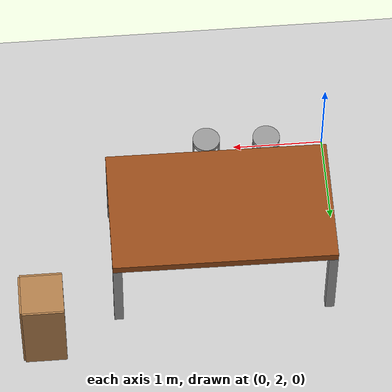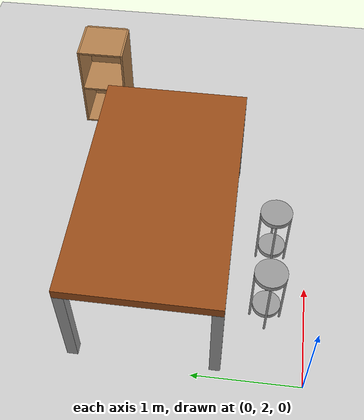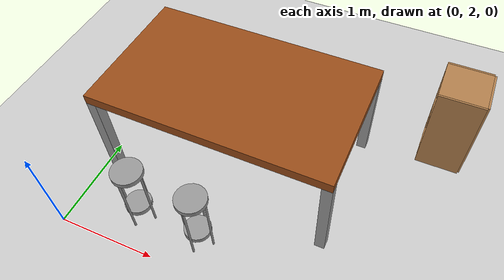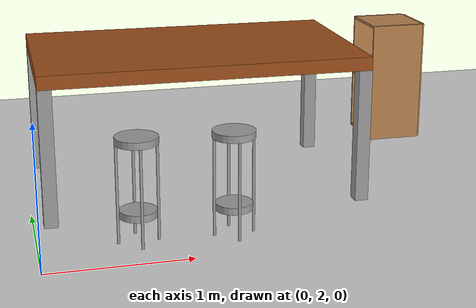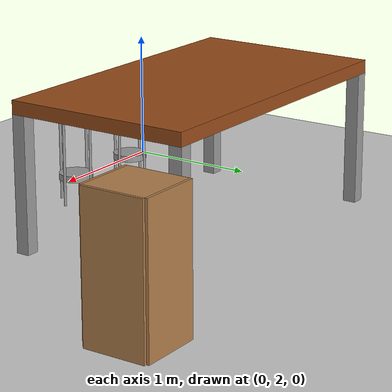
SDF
<sdf version="1.6">
 <world name="default">
  <model name="ground_plane">
   <static>1</static>
   <link name="link">
    <collision name="collision">
     <geometry><plane><normal>0 0 1</normal><size>100 100</size></plane></geometry>
     <surface><friction><ode><mu>100</mu><mu2>50</mu2></ode></friction></surface>
    </collision>
    <visual name="visual">
     <cast_shadows>0</cast_shadows>
     <geometry><plane><normal>0 0 1</normal><size>100 100</size></plane></geometry>
     <material>
      <script><uri>file://media/materials/scripts/gazebo.material</uri><name>Gazebo/Grey</name></script>
     </material>
    </visual>
   </link>
  </model>
  <model name="cabinet">
   <static>1</static>
   <link name="cabinet_bottom_plate">
    <inertial>
     <pose>0 0 -1 0 -0 0</pose>
     <inertia><ixx>2.05</ixx><ixy>0</ixy><ixz>0</ixz><iyy>2.05</iyy><iyz>0</iyz><izz>2.05</izz></inertia>
     <mass>25</mass>
    </inertial>
    <collision name="cabinet_bottom_plate_geom">
     <pose>0 0 0.01 0 -0 0</pose>
     <geometry><box><size>0.45 0.45 0.02</size></box></geometry>
    </collision>
    <visual name="cabinet_bottom_plate_geom_visual">
     <pose>0 0 0.01 0 -0 0</pose>
     <geometry><box><size>0.45 0.45 0.02</size></box></geometry>
     <material>
      <script><uri>file://media/materials/scripts/gazebo.material</uri><name>Gazebo/Wood</name></script>
     </material>
    </visual>
    <collision name="cabinet_bottom_plate_geom_cabinet_back_plate">
     <pose>0.235 0 0.51 0 -0 0</pose>
     <geometry><box><size>0.02 0.45 1.02</size></box></geometry>
    </collision>
    <visual name="cabinet_bottom_plate_geom_cabinet_back_plate_visual">
     <pose>0.235 0 0.51 0 -0 0</pose>
     <geometry><box><size>0.02 0.45 1.02</size></box></geometry>
     <material>
      <script><uri>file://media/materials/scripts/gazebo.material</uri><name>Gazebo/Wood</name></script>
     </material>
    </visual>
    <collision name="cabinet_bottom_plate_geom_cabinet_left_plate">
     <pose>0 0.235 0.51 0 -0 0</pose>
     <geometry><box><size>0.45 0.02 1.02</size></box></geometry>
    </collision>
    <visual name="cabinet_bottom_plate_geom_cabinet_left_plate_visual">
     <pose>0 0.235 0.51 0 -0 0</pose>
     <geometry><box><size>0.45 0.02 1.02</size></box></geometry>
     <material>
      <script><uri>file://media/materials/scripts/gazebo.material</uri><name>Gazebo/Wood</name></script>
     </material>
    </visual>
    <collision name="cabinet_bottom_plate_geom_cabinet_middle_plate">
     <pose>0 0 0.51 0 -0 0</pose>
     <geometry><box><size>0.45 0.45 0.02</size></box></geometry>
    </collision>
    <visual name="cabinet_bottom_plate_geom_cabinet_middle_plate_visual">
     <pose>0 0 0.51 0 -0 0</pose>
     <geometry><box><size>0.45 0.45 0.02</size></box></geometry>
     <material>
      <script><uri>file://media/materials/scripts/gazebo.material</uri><name>Gazebo/Wood</name></script>
     </material>
    </visual>
    <collision name="cabinet_bottom_plate_geom_cabinet_right_plate">
     <pose>0 -0.235 0.51 0 -0 0</pose>
     <geometry><box><size>0.45 0.02 1.02</size></box></geometry>
    </collision>
    <visual name="cabinet_bottom_plate_geom_cabinet_right_plate_visual">
     <pose>0 -0.235 0.51 0 -0 0</pose>
     <geometry><box><size>0.45 0.02 1.02</size></box></geometry>
     <material>
      <script><uri>file://media/materials/scripts/gazebo.material</uri><name>Gazebo/Wood</name></script>
     </material>
    </visual>
    <collision name="cabinet_bottom_plate_geom_cabinet_top_plate">
     <pose>0 0 1.01 0 -0 0</pose>
     <geometry><box><size>0.45 0.45 0.02</size></box></geometry>
    </collision>
    <visual name="cabinet_bottom_plate_geom_cabinet_top_plate_visual">
     <pose>0 0 1.01 0 -0 0</pose>
     <geometry><box><size>0.45 0.45 0.02</size></box></geometry>
     <material>
      <script><uri>file://media/materials/scripts/gazebo.material</uri><name>Gazebo/Wood</name></script>
     </material>
    </visual>
   </link>
   <pose>3.24554 4.32799 0 0 -0 0</pose>
  </model>
  <model name="TableStudent">
   <link name="link_6">
    <pose>0 0 0.44 0 -0 0</pose>
    <inertial>
     <mass>1</mass>
     <inertia>
      <ixx>0.166667</ixx>
      <ixy>0</ixy>
      <ixz>0</ixz>
      <iyy>0.166667</iyy>
      <iyz>0</iyz>
      <izz>0.166667</izz>
     </inertia>
    </inertial>
    <visual name="visual">
     <geometry><box><size>2.4 1.4 0.1</size></box></geometry>
     <material>
      <lighting>1</lighting>
      <script><uri>file://media/materials/scripts/gazebo.material</uri><name>Gazebo/Grey</name></script>
      <shader type="pixel"><normal_map>__default__</normal_map></shader>
      <ambient>0.6 0.3 0.1 1</ambient>
      <diffuse>0.7 0.7 0.7 1</diffuse>
      <specular>0.01 0.01 0.01 1</specular>
      <emissive>0 0 0 1</emissive>
     </material>
    </visual>
    <collision name="collision">
     <geometry><box><size>2.4 1.4 0.1</size></box></geometry>
     <surface>
      <friction>
       <ode><mu>1</mu><mu2>1</mu2><fdir1>0 0 0</fdir1><slip1>0</slip1><slip2>0</slip2></ode>
       <torsional>
        <coefficient>1</coefficient>
        <patch_radius>0</patch_radius>
        <surface_radius>0</surface_radius>
        <use_patch_radius>1</use_patch_radius>
        <ode><slip>0</slip></ode>
       </torsional>
      </friction>
      <bounce><restitution_coefficient>0</restitution_coefficient><threshold>1e+06</threshold></bounce>
      <contact>
       <collide_without_contact>0</collide_without_contact>
       <collide_without_contact_bitmask>1</collide_without_contact_bitmask>
       <collide_bitmask>1</collide_bitmask>
       <ode>
        <soft_cfm>0</soft_cfm>
        <soft_erp>0.2</soft_erp>
        <kp>1e+13</kp>
        <kd>1</kd>
        <max_vel>0.01</max_vel>
        <min_depth>0</min_depth>
       </ode>
       <bullet>
        <split_impulse>1</split_impulse>
        <split_impulse_penetration_threshold>-0.01</split_impulse_penetration_threshold>
        <soft_cfm>0</soft_cfm>
        <soft_erp>0.2</soft_erp>
        <kp>1e+13</kp>
        <kd>1</kd>
       </bullet>
      </contact>
     </surface>
    </collision>
   </link>
   <link name="link_7">
    <pose>1.15 0.65 -0.11 0 -0 0</pose>
    <inertial>
     <mass>2</mass>
     <inertia>
      <ixx>0.166667</ixx>
      <ixy>0</ixy>
      <ixz>0</ixz>
      <iyy>0.166667</iyy>
      <iyz>0</iyz>
      <izz>0.166667</izz>
     </inertia>
    </inertial>
    <visual name="visual">
     <geometry><box><size>0.1 0.1 1</size></box></geometry>
     <material>
      <lighting>1</lighting>
      <script><uri>file://media/materials/scripts/gazebo.material</uri><name>Gazebo/Grey</name></script>
      <shader type="pixel"><normal_map>__default__</normal_map></shader>
      <ambient>0.3 0.3 0.3 1</ambient>
      <diffuse>0.7 0.7 0.7 1</diffuse>
      <specular>0.01 0.01 0.01 1</specular>
      <emissive>0 0 0 1</emissive>
     </material>
    </visual>
    <collision name="collision">
     <geometry><box><size>0.1 0.1 1</size></box></geometry>
     <surface>
      <friction>
       <ode><mu>1</mu><mu2>1</mu2><fdir1>0 0 0</fdir1><slip1>0</slip1><slip2>0</slip2></ode>
       <torsional>
        <coefficient>1</coefficient>
        <patch_radius>0</patch_radius>
        <surface_radius>0</surface_radius>
        <use_patch_radius>1</use_patch_radius>
        <ode><slip>0</slip></ode>
       </torsional>
      </friction>
      <bounce><restitution_coefficient>0</restitution_coefficient><threshold>1e+06</threshold></bounce>
      <contact>
       <collide_without_contact>0</collide_without_contact>
       <collide_without_contact_bitmask>1</collide_without_contact_bitmask>
       <collide_bitmask>1</collide_bitmask>
       <ode>
        <soft_cfm>0</soft_cfm>
        <soft_erp>0.2</soft_erp>
        <kp>1e+13</kp>
        <kd>1</kd>
        <max_vel>0.01</max_vel>
        <min_depth>0</min_depth>
       </ode>
       <bullet>
        <split_impulse>1</split_impulse>
        <split_impulse_penetration_threshold>-0.01</split_impulse_penetration_threshold>
        <soft_cfm>0</soft_cfm>
        <soft_erp>0.2</soft_erp>
        <kp>1e+13</kp>
        <kd>1</kd>
       </bullet>
      </contact>
     </surface>
    </collision>
   </link>
   <link name="link_7_clone">
    <pose>-1.15 -0.65 -0.11 0 -0 0</pose>
    <inertial>
     <mass>2</mass>
     <inertia>
      <ixx>0.166667</ixx>
      <ixy>0</ixy>
      <ixz>0</ixz>
      <iyy>0.166667</iyy>
      <iyz>0</iyz>
      <izz>0.166667</izz>
     </inertia>
    </inertial>
    <visual name="visual">
     <geometry><box><size>0.1 0.1 1</size></box></geometry>
     <material>
      <lighting>1</lighting>
      <script><uri>file://media/materials/scripts/gazebo.material</uri><name>Gazebo/Grey</name></script>
      <shader type="pixel"><normal_map>__default__</normal_map></shader>
      <ambient>0.3 0.3 0.3 1</ambient>
      <diffuse>0.7 0.7 0.7 1</diffuse>
      <specular>0.01 0.01 0.01 1</specular>
      <emissive>0 0 0 1</emissive>
     </material>
    </visual>
    <collision name="collision">
     <geometry><box><size>0.1 0.1 1</size></box></geometry>
     <surface>
      <friction>
       <ode><mu>1</mu><mu2>1</mu2><fdir1>0 0 0</fdir1><slip1>0</slip1><slip2>0</slip2></ode>
       <torsional>
        <coefficient>1</coefficient>
        <patch_radius>0</patch_radius>
        <surface_radius>0</surface_radius>
        <use_patch_radius>1</use_patch_radius>
        <ode><slip>0</slip></ode>
       </torsional>
      </friction>
      <bounce><restitution_coefficient>0</restitution_coefficient><threshold>1e+06</threshold></bounce>
      <contact>
       <collide_without_contact>0</collide_without_contact>
       <collide_without_contact_bitmask>1</collide_without_contact_bitmask>
       <collide_bitmask>1</collide_bitmask>
       <ode>
        <soft_cfm>0</soft_cfm>
        <soft_erp>0.2</soft_erp>
        <kp>1e+13</kp>
        <kd>1</kd>
        <max_vel>0.01</max_vel>
        <min_depth>0</min_depth>
       </ode>
       <bullet>
        <split_impulse>1</split_impulse>
        <split_impulse_penetration_threshold>-0.01</split_impulse_penetration_threshold>
        <soft_cfm>0</soft_cfm>
        <soft_erp>0.2</soft_erp>
        <kp>1e+13</kp>
        <kd>1</kd>
       </bullet>
      </contact>
     </surface>
    </collision>
   </link>
   <link name="link_7_clone_0">
    <pose>1.15 -0.65 -0.11 0 -0 0</pose>
    <inertial>
     <mass>2</mass>
     <inertia>
      <ixx>0.166667</ixx>
      <ixy>0</ixy>
      <ixz>0</ixz>
      <iyy>0.166667</iyy>
      <iyz>0</iyz>
      <izz>0.166667</izz>
     </inertia>
    </inertial>
    <visual name="visual">
     <geometry><box><size>0.1 0.1 1</size></box></geometry>
     <material>
      <lighting>1</lighting>
      <script><uri>file://media/materials/scripts/gazebo.material</uri><name>Gazebo/Grey</name></script>
      <shader type="pixel"><normal_map>__default__</normal_map></shader>
      <ambient>0.3 0.3 0.3 1</ambient>
      <diffuse>0.7 0.7 0.7 1</diffuse>
      <specular>0.01 0.01 0.01 1</specular>
      <emissive>0 0 0 1</emissive>
     </material>
    </visual>
    <collision name="collision">
     <geometry><box><size>0.1 0.1 1</size></box></geometry>
     <surface>
      <friction>
       <ode><mu>1</mu><mu2>1</mu2><fdir1>0 0 0</fdir1><slip1>0</slip1><slip2>0</slip2></ode>
       <torsional>
        <coefficient>1</coefficient>
        <patch_radius>0</patch_radius>
        <surface_radius>0</surface_radius>
        <use_patch_radius>1</use_patch_radius>
        <ode><slip>0</slip></ode>
       </torsional>
      </friction>
      <bounce><restitution_coefficient>0</restitution_coefficient><threshold>1e+06</threshold></bounce>
      <contact>
       <collide_without_contact>0</collide_without_contact>
       <collide_without_contact_bitmask>1</collide_without_contact_bitmask>
       <collide_bitmask>1</collide_bitmask>
       <ode>
        <soft_cfm>0</soft_cfm>
        <soft_erp>0.2</soft_erp>
        <kp>1e+13</kp>
        <kd>1</kd>
        <max_vel>0.01</max_vel>
        <min_depth>0</min_depth>
       </ode>
       <bullet>
        <split_impulse>1</split_impulse>
        <split_impulse_penetration_threshold>-0.01</split_impulse_penetration_threshold>
        <soft_cfm>0</soft_cfm>
        <soft_erp>0.2</soft_erp>
        <kp>1e+13</kp>
        <kd>1</kd>
       </bullet>
      </contact>
     </surface>
    </collision>
   </link>
   <link name="link_7_clone_1">
    <pose>-1.15 0.65 -0.11 0 -0 0</pose>
    <inertial>
     <mass>2</mass>
     <inertia>
      <ixx>0.166667</ixx>
      <ixy>0</ixy>
      <ixz>0</ixz>
      <iyy>0.166667</iyy>
      <iyz>0</iyz>
      <izz>0.166667</izz>
     </inertia>
    </inertial>
    <visual name="visual">
     <geometry><box><size>0.1 0.1 1</size></box></geometry>
     <material>
      <lighting>1</lighting>
      <script><uri>file://media/materials/scripts/gazebo.material</uri><name>Gazebo/Grey</name></script>
      <shader type="pixel"><normal_map>__default__</normal_map></shader>
      <ambient>0.3 0.3 0.3 1</ambient>
      <diffuse>0.7 0.7 0.7 1</diffuse>
      <specular>0.01 0.01 0.01 1</specular>
      <emissive>0 0 0 1</emissive>
     </material>
    </visual>
    <collision name="collision">
     <geometry><box><size>0.1 0.1 1</size></box></geometry>
     <surface>
      <friction>
       <ode><mu>1</mu><mu2>1</mu2><fdir1>0 0 0</fdir1><slip1>0</slip1><slip2>0</slip2></ode>
       <torsional>
        <coefficient>1</coefficient>
        <patch_radius>0</patch_radius>
        <surface_radius>0</surface_radius>
        <use_patch_radius>1</use_patch_radius>
        <ode><slip>0</slip></ode>
       </torsional>
      </friction>
      <bounce><restitution_coefficient>0</restitution_coefficient><threshold>1e+06</threshold></bounce>
      <contact>
       <collide_without_contact>0</collide_without_contact>
       <collide_without_contact_bitmask>1</collide_without_contact_bitmask>
       <collide_bitmask>1</collide_bitmask>
       <ode>
        <soft_cfm>0</soft_cfm>
        <soft_erp>0.2</soft_erp>
        <kp>1e+13</kp>
        <kd>1</kd>
        <max_vel>0.01</max_vel>
        <min_depth>0</min_depth>
       </ode>
       <bullet>
        <split_impulse>1</split_impulse>
        <split_impulse_penetration_threshold>-0.01</split_impulse_penetration_threshold>
        <soft_cfm>0</soft_cfm>
        <soft_erp>0.2</soft_erp>
        <kp>1e+13</kp>
        <kd>1</kd>
       </bullet>
      </contact>
     </surface>
    </collision>
   </link>
   <joint name="link_6_JOINT_10" type="fixed">
    <parent>link_6</parent>
    <child>link_7_clone</child>
    <physics>
     <ode><limit><cfm>0</cfm><erp>0.2</erp></limit><suspension><cfm>0</cfm><erp>0.2</erp></suspension></ode>
    </physics>
   </joint>
   <joint name="link_6_JOINT_11" type="fixed">
    <parent>link_6</parent>
    <child>link_7_clone_1</child>
    <physics>
     <ode><limit><cfm>0</cfm><erp>0.2</erp></limit><suspension><cfm>0</cfm><erp>0.2</erp></suspension></ode>
    </physics>
   </joint>
   <joint name="link_6_JOINT_12" type="fixed">
    <parent>link_6</parent>
    <child>link_7</child>
    <physics>
     <ode><limit><cfm>0</cfm><erp>0.2</erp></limit><suspension><cfm>0</cfm><erp>0.2</erp></suspension></ode>
    </physics>
   </joint>
   <joint name="link_6_JOINT_13" type="revolute">
    <parent>link_6</parent>
    <child>link_7_clone_0</child>
    <axis>
     <xyz>1 0 0</xyz>
     <use_parent_model_frame>0</use_parent_model_frame>
     <limit>
      <lower>-1.79769e+308</lower>
      <upper>1.79769e+308</upper>
      <effort>-1</effort>
      <velocity>-1</velocity>
     </limit>
     <dynamics>
      <spring_reference>0</spring_reference>
      <spring_stiffness>0</spring_stiffness>
      <damping>0</damping>
     </dynamics>
    </axis>
    <physics>
     <ode><limit><cfm>0</cfm><erp>0.2</erp></limit><suspension><cfm>0</cfm><erp>0.2</erp></suspension></ode>
    </physics>
   </joint>
   <static>0</static>
   <pose>1.27771 3.43037 0.61 0 0 -0.008017</pose>
  </model>
  <model name="Stool_0">
   <link name="link_3">
    <pose>0 -0 0.316667 0 -0 0</pose>
    <inertial>
     <mass>0.2</mass>
     <inertia><ixx>0.145833</ixx><ixy>0</ixy><ixz>0</ixz><iyy>0.145833</iyy><iyz>0</iyz><izz>0.125</izz></inertia>
    </inertial>
    <visual name="visual">
     <geometry><cylinder><radius>0.15</radius><length>0.05</length></cylinder></geometry>
     <material>
      <lighting>1</lighting>
      <script><uri>file://media/materials/scripts/gazebo.material</uri><name>Gazebo/Grey</name></script>
      <shader type="pixel"><normal_map>__default__</normal_map></shader>
      <ambient>0.3 0.3 0.3 1</ambient>
      <diffuse>0.7 0.7 0.7 1</diffuse>
      <specular>0.01 0.01 0.01 1</specular>
      <emissive>0 0 0 1</emissive>
     </material>
    </visual>
    <collision name="collision">
     <geometry><cylinder><radius>0.15</radius><length>0.05</length></cylinder></geometry>
     <surface>
      <friction>
       <ode><mu>1</mu><mu2>1</mu2><fdir1>0 0 0</fdir1><slip1>0</slip1><slip2>0</slip2></ode>
       <torsional>
        <coefficient>1</coefficient>
        <patch_radius>0</patch_radius>
        <surface_radius>0</surface_radius>
        <use_patch_radius>1</use_patch_radius>
        <ode><slip>0</slip></ode>
       </torsional>
      </friction>
      <bounce><restitution_coefficient>0</restitution_coefficient><threshold>1e+06</threshold></bounce>
      <contact>
       <collide_without_contact>0</collide_without_contact>
       <collide_without_contact_bitmask>1</collide_without_contact_bitmask>
       <collide_bitmask>1</collide_bitmask>
       <ode>
        <soft_cfm>0</soft_cfm>
        <soft_erp>0.2</soft_erp>
        <kp>1e+13</kp>
        <kd>1</kd>
        <max_vel>0.01</max_vel>
        <min_depth>0</min_depth>
       </ode>
       <bullet>
        <split_impulse>1</split_impulse>
        <split_impulse_penetration_threshold>-0.01</split_impulse_penetration_threshold>
        <soft_cfm>0</soft_cfm>
        <soft_erp>0.2</soft_erp>
        <kp>1e+13</kp>
        <kd>1</kd>
       </bullet>
      </contact>
     </surface>
    </collision>
   </link>
   <link name="link_4">
    <pose>-0 0 -0.2 0 -0 0</pose>
    <inertial>
     <mass>1</mass>
     <inertia><ixx>0.145833</ixx><ixy>0</ixy><ixz>0</ixz><iyy>0.145833</iyy><iyz>0</iyz><izz>0.125</izz></inertia>
    </inertial>
    <visual name="visual">
     <geometry><cylinder><radius>0.13</radius><length>0.05</length></cylinder></geometry>
     <material>
      <lighting>1</lighting>
      <script><uri>file://media/materials/scripts/gazebo.material</uri><name>Gazebo/Grey</name></script>
      <shader type="pixel"><normal_map>__default__</normal_map></shader>
      <ambient>0.3 0.3 0.3 1</ambient>
      <diffuse>0.7 0.7 0.7 1</diffuse>
      <specular>0.01 0.01 0.01 1</specular>
      <emissive>0 0 0 1</emissive>
     </material>
    </visual>
    <collision name="collision">
     <geometry><cylinder><radius>0.13</radius><length>0.05</length></cylinder></geometry>
     <surface>
      <friction>
       <ode><mu>1</mu><mu2>1</mu2><fdir1>0 0 0</fdir1><slip1>0</slip1><slip2>0</slip2></ode>
       <torsional>
        <coefficient>1</coefficient>
        <patch_radius>0</patch_radius>
        <surface_radius>0</surface_radius>
        <use_patch_radius>1</use_patch_radius>
        <ode><slip>0</slip></ode>
       </torsional>
      </friction>
      <bounce><restitution_coefficient>0</restitution_coefficient><threshold>1e+06</threshold></bounce>
      <contact>
       <collide_without_contact>0</collide_without_contact>
       <collide_without_contact_bitmask>1</collide_without_contact_bitmask>
       <collide_bitmask>1</collide_bitmask>
       <ode>
        <soft_cfm>0</soft_cfm>
        <soft_erp>0.2</soft_erp>
        <kp>1e+13</kp>
        <kd>1</kd>
        <max_vel>0.01</max_vel>
        <min_depth>0</min_depth>
       </ode>
       <bullet>
        <split_impulse>1</split_impulse>
        <split_impulse_penetration_threshold>-0.01</split_impulse_penetration_threshold>
        <soft_cfm>0</soft_cfm>
        <soft_erp>0.2</soft_erp>
        <kp>1e+13</kp>
        <kd>1</kd>
       </bullet>
      </contact>
     </surface>
    </collision>
   </link>
   <link name="link_5">
    <pose>0.14 0 -0.058333 0 -0 0</pose>
    <inertial>
     <mass>1</mass>
     <inertia><ixx>0.145833</ixx><ixy>0</ixy><ixz>0</ixz><iyy>0.145833</iyy><iyz>0</iyz><izz>0.125</izz></inertia>
    </inertial>
    <visual name="visual">
     <geometry><cylinder><radius>0.01</radius><length>0.7</length></cylinder></geometry>
     <material>
      <lighting>1</lighting>
      <script><uri>file://media/materials/scripts/gazebo.material</uri><name>Gazebo/Grey</name></script>
      <shader type="pixel"><normal_map>__default__</normal_map></shader>
      <ambient>0.3 0.3 0.3 1</ambient>
      <diffuse>0.7 0.7 0.7 1</diffuse>
      <specular>0.01 0.01 0.01 1</specular>
      <emissive>0 0 0 1</emissive>
     </material>
    </visual>
    <collision name="collision">
     <geometry><cylinder><radius>0.01</radius><length>0.7</length></cylinder></geometry>
     <surface>
      <friction>
       <ode><mu>1</mu><mu2>1</mu2><fdir1>0 0 0</fdir1><slip1>0</slip1><slip2>0</slip2></ode>
       <torsional>
        <coefficient>1</coefficient>
        <patch_radius>0</patch_radius>
        <surface_radius>0</surface_radius>
        <use_patch_radius>1</use_patch_radius>
        <ode><slip>0</slip></ode>
       </torsional>
      </friction>
      <bounce><restitution_coefficient>0</restitution_coefficient><threshold>1e+06</threshold></bounce>
      <contact>
       <collide_without_contact>0</collide_without_contact>
       <collide_without_contact_bitmask>1</collide_without_contact_bitmask>
       <collide_bitmask>1</collide_bitmask>
       <ode>
        <soft_cfm>0</soft_cfm>
        <soft_erp>0.2</soft_erp>
        <kp>1e+13</kp>
        <kd>1</kd>
        <max_vel>0.01</max_vel>
        <min_depth>0</min_depth>
       </ode>
       <bullet>
        <split_impulse>1</split_impulse>
        <split_impulse_penetration_threshold>-0.01</split_impulse_penetration_threshold>
        <soft_cfm>0</soft_cfm>
        <soft_erp>0.2</soft_erp>
        <kp>1e+13</kp>
        <kd>1</kd>
       </bullet>
      </contact>
     </surface>
    </collision>
   </link>
   <link name="link_5_clone">
    <pose>-0.14 0 -0.058333 0 -0 0</pose>
    <inertial>
     <mass>1</mass>
     <inertia><ixx>0.145833</ixx><ixy>0</ixy><ixz>0</ixz><iyy>0.145833</iyy><iyz>0</iyz><izz>0.125</izz></inertia>
    </inertial>
    <visual name="visual">
     <geometry><cylinder><radius>0.01</radius><length>0.7</length></cylinder></geometry>
     <material>
      <lighting>1</lighting>
      <script><uri>file://media/materials/scripts/gazebo.material</uri><name>Gazebo/Grey</name></script>
      <shader type="pixel"><normal_map>__default__</normal_map></shader>
      <ambient>0.3 0.3 0.3 1</ambient>
      <diffuse>0.7 0.7 0.7 1</diffuse>
      <specular>0.01 0.01 0.01 1</specular>
      <emissive>0 0 0 1</emissive>
     </material>
    </visual>
    <collision name="collision">
     <geometry><cylinder><radius>0.01</radius><length>0.7</length></cylinder></geometry>
     <surface>
      <friction>
       <ode><mu>1</mu><mu2>1</mu2><fdir1>0 0 0</fdir1><slip1>0</slip1><slip2>0</slip2></ode>
       <torsional>
        <coefficient>1</coefficient>
        <patch_radius>0</patch_radius>
        <surface_radius>0</surface_radius>
        <use_patch_radius>1</use_patch_radius>
        <ode><slip>0</slip></ode>
       </torsional>
      </friction>
      <bounce><restitution_coefficient>0</restitution_coefficient><threshold>1e+06</threshold></bounce>
      <contact>
       <collide_without_contact>0</collide_without_contact>
       <collide_without_contact_bitmask>1</collide_without_contact_bitmask>
       <collide_bitmask>1</collide_bitmask>
       <ode>
        <soft_cfm>0</soft_cfm>
        <soft_erp>0.2</soft_erp>
        <kp>1e+13</kp>
        <kd>1</kd>
        <max_vel>0.01</max_vel>
        <min_depth>0</min_depth>
       </ode>
       <bullet>
        <split_impulse>1</split_impulse>
        <split_impulse_penetration_threshold>-0.01</split_impulse_penetration_threshold>
        <soft_cfm>0</soft_cfm>
        <soft_erp>0.2</soft_erp>
        <kp>1e+13</kp>
        <kd>1</kd>
       </bullet>
      </contact>
     </surface>
    </collision>
   </link>
   <link name="link_5_clone_0">
    <pose>-0 0.14 -0.058333 0 -0 0</pose>
    <inertial>
     <mass>1</mass>
     <inertia><ixx>0.145833</ixx><ixy>0</ixy><ixz>0</ixz><iyy>0.145833</iyy><iyz>0</iyz><izz>0.125</izz></inertia>
    </inertial>
    <visual name="visual">
     <geometry><cylinder><radius>0.01</radius><length>0.7</length></cylinder></geometry>
     <material>
      <lighting>1</lighting>
      <script><uri>file://media/materials/scripts/gazebo.material</uri><name>Gazebo/Grey</name></script>
      <shader type="pixel"><normal_map>__default__</normal_map></shader>
      <ambient>0.3 0.3 0.3 1</ambient>
      <diffuse>0.7 0.7 0.7 1</diffuse>
      <specular>0.01 0.01 0.01 1</specular>
      <emissive>0 0 0 1</emissive>
     </material>
    </visual>
    <collision name="collision">
     <geometry><cylinder><radius>0.01</radius><length>0.7</length></cylinder></geometry>
     <surface>
      <friction>
       <ode><mu>1</mu><mu2>1</mu2><fdir1>0 0 0</fdir1><slip1>0</slip1><slip2>0</slip2></ode>
       <torsional>
        <coefficient>1</coefficient>
        <patch_radius>0</patch_radius>
        <surface_radius>0</surface_radius>
        <use_patch_radius>1</use_patch_radius>
        <ode><slip>0</slip></ode>
       </torsional>
      </friction>
      <bounce><restitution_coefficient>0</restitution_coefficient><threshold>1e+06</threshold></bounce>
      <contact>
       <collide_without_contact>0</collide_without_contact>
       <collide_without_contact_bitmask>1</collide_without_contact_bitmask>
       <collide_bitmask>1</collide_bitmask>
       <ode>
        <soft_cfm>0</soft_cfm>
        <soft_erp>0.2</soft_erp>
        <kp>1e+13</kp>
        <kd>1</kd>
        <max_vel>0.01</max_vel>
        <min_depth>0</min_depth>
       </ode>
       <bullet>
        <split_impulse>1</split_impulse>
        <split_impulse_penetration_threshold>-0.01</split_impulse_penetration_threshold>
        <soft_cfm>0</soft_cfm>
        <soft_erp>0.2</soft_erp>
        <kp>1e+13</kp>
        <kd>1</kd>
       </bullet>
      </contact>
     </surface>
    </collision>
   </link>
   <link name="link_5_clone_1">
    <pose>0 -0.14 -0.058333 0 -0 0</pose>
    <inertial>
     <mass>1</mass>
     <inertia><ixx>0.145833</ixx><ixy>0</ixy><ixz>0</ixz><iyy>0.145833</iyy><iyz>0</iyz><izz>0.125</izz></inertia>
    </inertial>
    <visual name="visual">
     <geometry><cylinder><radius>0.01</radius><length>0.7</length></cylinder></geometry>
     <material>
      <lighting>1</lighting>
      <script><uri>file://media/materials/scripts/gazebo.material</uri><name>Gazebo/Grey</name></script>
      <shader type="pixel"><normal_map>__default__</normal_map></shader>
      <ambient>0.3 0.3 0.3 1</ambient>
      <diffuse>0.7 0.7 0.7 1</diffuse>
      <specular>0.01 0.01 0.01 1</specular>
      <emissive>0 0 0 1</emissive>
     </material>
    </visual>
    <collision name="collision">
     <geometry><cylinder><radius>0.01</radius><length>0.7</length></cylinder></geometry>
     <surface>
      <friction>
       <ode><mu>1</mu><mu2>1</mu2><fdir1>0 0 0</fdir1><slip1>0</slip1><slip2>0</slip2></ode>
       <torsional>
        <coefficient>1</coefficient>
        <patch_radius>0</patch_radius>
        <surface_radius>0</surface_radius>
        <use_patch_radius>1</use_patch_radius>
        <ode><slip>0</slip></ode>
       </torsional>
      </friction>
      <bounce><restitution_coefficient>0</restitution_coefficient><threshold>1e+06</threshold></bounce>
      <contact>
       <collide_without_contact>0</collide_without_contact>
       <collide_without_contact_bitmask>1</collide_without_contact_bitmask>
       <collide_bitmask>1</collide_bitmask>
       <ode>
        <soft_cfm>0</soft_cfm>
        <soft_erp>0.2</soft_erp>
        <kp>1e+13</kp>
        <kd>1</kd>
        <max_vel>0.01</max_vel>
        <min_depth>0</min_depth>
       </ode>
       <bullet>
        <split_impulse>1</split_impulse>
        <split_impulse_penetration_threshold>-0.01</split_impulse_penetration_threshold>
        <soft_cfm>0</soft_cfm>
        <soft_erp>0.2</soft_erp>
        <kp>1e+13</kp>
        <kd>1</kd>
       </bullet>
      </contact>
     </surface>
    </collision>
   </link>
   <joint name="link_4_JOINT_0" type="fixed">
    <parent>link_4</parent>
    <child>link_5_clone_1</child>
    <physics>
     <ode><limit><cfm>0</cfm><erp>0.2</erp></limit><suspension><cfm>0</cfm><erp>0.2</erp></suspension></ode>
    </physics>
   </joint>
   <joint name="link_4_JOINT_1" type="fixed">
    <parent>link_4</parent>
    <child>link_5_clone</child>
    <physics>
     <ode><limit><cfm>0</cfm><erp>0.2</erp></limit><suspension><cfm>0</cfm><erp>0.2</erp></suspension></ode>
    </physics>
   </joint>
   <joint name="link_4_JOINT_2" type="fixed">
    <parent>link_4</parent>
    <child>link_5_clone_0</child>
    <physics>
     <ode><limit><cfm>0</cfm><erp>0.2</erp></limit><suspension><cfm>0</cfm><erp>0.2</erp></suspension></ode>
    </physics>
   </joint>
   <joint name="link_4_JOINT_3" type="fixed">
    <parent>link_4</parent>
    <child>link_5</child>
    <physics>
     <ode><limit><cfm>0</cfm><erp>0.2</erp></limit><suspension><cfm>0</cfm><erp>0.2</erp></suspension></ode>
    </physics>
   </joint>
   <joint name="link_4_JOINT_4" type="fixed">
    <parent>link_4</parent>
    <child>link_3</child>
    <physics>
     <ode><limit><cfm>0</cfm><erp>0.2</erp></limit><suspension><cfm>0</cfm><erp>0.2</erp></suspension></ode>
    </physics>
   </joint>
   <static>0</static>
   <pose>0.682814 2.37131 0.408333 -1e-06 -2e-06 0.029687</pose>
  </model>
  <model name="Stool_0_clone_0">
   <link name="link_3">
    <pose>0 -0 0.316667 0 -0 0</pose>
    <inertial>
     <mass>0.2</mass>
     <inertia><ixx>0.145833</ixx><ixy>0</ixy><ixz>0</ixz><iyy>0.145833</iyy><iyz>0</iyz><izz>0.125</izz></inertia>
    </inertial>
    <visual name="visual">
     <geometry><cylinder><radius>0.15</radius><length>0.05</length></cylinder></geometry>
     <material>
      <lighting>1</lighting>
      <script><uri>file://media/materials/scripts/gazebo.material</uri><name>Gazebo/Grey</name></script>
      <shader type="pixel"><normal_map>__default__</normal_map></shader>
      <ambient>0.3 0.3 0.3 1</ambient>
      <diffuse>0.7 0.7 0.7 1</diffuse>
      <specular>0.01 0.01 0.01 1</specular>
      <emissive>0 0 0 1</emissive>
     </material>
    </visual>
    <collision name="collision">
     <geometry><cylinder><radius>0.15</radius><length>0.05</length></cylinder></geometry>
     <surface>
      <friction>
       <ode><mu>1</mu><mu2>1</mu2><fdir1>0 0 0</fdir1><slip1>0</slip1><slip2>0</slip2></ode>
       <torsional>
        <coefficient>1</coefficient>
        <patch_radius>0</patch_radius>
        <surface_radius>0</surface_radius>
        <use_patch_radius>1</use_patch_radius>
        <ode><slip>0</slip></ode>
       </torsional>
      </friction>
      <bounce><restitution_coefficient>0</restitution_coefficient><threshold>1e+06</threshold></bounce>
      <contact>
       <collide_without_contact>0</collide_without_contact>
       <collide_without_contact_bitmask>1</collide_without_contact_bitmask>
       <collide_bitmask>1</collide_bitmask>
       <ode>
        <soft_cfm>0</soft_cfm>
        <soft_erp>0.2</soft_erp>
        <kp>1e+13</kp>
        <kd>1</kd>
        <max_vel>0.01</max_vel>
        <min_depth>0</min_depth>
       </ode>
       <bullet>
        <split_impulse>1</split_impulse>
        <split_impulse_penetration_threshold>-0.01</split_impulse_penetration_threshold>
        <soft_cfm>0</soft_cfm>
        <soft_erp>0.2</soft_erp>
        <kp>1e+13</kp>
        <kd>1</kd>
       </bullet>
      </contact>
     </surface>
    </collision>
   </link>
   <link name="link_4">
    <pose>-0 0 -0.2 0 -0 0</pose>
    <inertial>
     <mass>1</mass>
     <inertia><ixx>0.145833</ixx><ixy>0</ixy><ixz>0</ixz><iyy>0.145833</iyy><iyz>0</iyz><izz>0.125</izz></inertia>
    </inertial>
    <visual name="visual">
     <geometry><cylinder><radius>0.13</radius><length>0.05</length></cylinder></geometry>
     <material>
      <lighting>1</lighting>
      <script><uri>file://media/materials/scripts/gazebo.material</uri><name>Gazebo/Grey</name></script>
      <shader type="pixel"><normal_map>__default__</normal_map></shader>
      <ambient>0.3 0.3 0.3 1</ambient>
      <diffuse>0.7 0.7 0.7 1</diffuse>
      <specular>0.01 0.01 0.01 1</specular>
      <emissive>0 0 0 1</emissive>
     </material>
    </visual>
    <collision name="collision">
     <geometry><cylinder><radius>0.13</radius><length>0.05</length></cylinder></geometry>
     <surface>
      <friction>
       <ode><mu>1</mu><mu2>1</mu2><fdir1>0 0 0</fdir1><slip1>0</slip1><slip2>0</slip2></ode>
       <torsional>
        <coefficient>1</coefficient>
        <patch_radius>0</patch_radius>
        <surface_radius>0</surface_radius>
        <use_patch_radius>1</use_patch_radius>
        <ode><slip>0</slip></ode>
       </torsional>
      </friction>
      <bounce><restitution_coefficient>0</restitution_coefficient><threshold>1e+06</threshold></bounce>
      <contact>
       <collide_without_contact>0</collide_without_contact>
       <collide_without_contact_bitmask>1</collide_without_contact_bitmask>
       <collide_bitmask>1</collide_bitmask>
       <ode>
        <soft_cfm>0</soft_cfm>
        <soft_erp>0.2</soft_erp>
        <kp>1e+13</kp>
        <kd>1</kd>
        <max_vel>0.01</max_vel>
        <min_depth>0</min_depth>
       </ode>
       <bullet>
        <split_impulse>1</split_impulse>
        <split_impulse_penetration_threshold>-0.01</split_impulse_penetration_threshold>
        <soft_cfm>0</soft_cfm>
        <soft_erp>0.2</soft_erp>
        <kp>1e+13</kp>
        <kd>1</kd>
       </bullet>
      </contact>
     </surface>
    </collision>
   </link>
   <link name="link_5">
    <pose>0.14 0 -0.058333 0 -0 0</pose>
    <inertial>
     <mass>1</mass>
     <inertia><ixx>0.145833</ixx><ixy>0</ixy><ixz>0</ixz><iyy>0.145833</iyy><iyz>0</iyz><izz>0.125</izz></inertia>
    </inertial>
    <visual name="visual">
     <geometry><cylinder><radius>0.01</radius><length>0.7</length></cylinder></geometry>
     <material>
      <lighting>1</lighting>
      <script><uri>file://media/materials/scripts/gazebo.material</uri><name>Gazebo/Grey</name></script>
      <shader type="pixel"><normal_map>__default__</normal_map></shader>
      <ambient>0.3 0.3 0.3 1</ambient>
      <diffuse>0.7 0.7 0.7 1</diffuse>
      <specular>0.01 0.01 0.01 1</specular>
      <emissive>0 0 0 1</emissive>
     </material>
    </visual>
    <collision name="collision">
     <geometry><cylinder><radius>0.01</radius><length>0.7</length></cylinder></geometry>
     <surface>
      <friction>
       <ode><mu>1</mu><mu2>1</mu2><fdir1>0 0 0</fdir1><slip1>0</slip1><slip2>0</slip2></ode>
       <torsional>
        <coefficient>1</coefficient>
        <patch_radius>0</patch_radius>
        <surface_radius>0</surface_radius>
        <use_patch_radius>1</use_patch_radius>
        <ode><slip>0</slip></ode>
       </torsional>
      </friction>
      <bounce><restitution_coefficient>0</restitution_coefficient><threshold>1e+06</threshold></bounce>
      <contact>
       <collide_without_contact>0</collide_without_contact>
       <collide_without_contact_bitmask>1</collide_without_contact_bitmask>
       <collide_bitmask>1</collide_bitmask>
       <ode>
        <soft_cfm>0</soft_cfm>
        <soft_erp>0.2</soft_erp>
        <kp>1e+13</kp>
        <kd>1</kd>
        <max_vel>0.01</max_vel>
        <min_depth>0</min_depth>
       </ode>
       <bullet>
        <split_impulse>1</split_impulse>
        <split_impulse_penetration_threshold>-0.01</split_impulse_penetration_threshold>
        <soft_cfm>0</soft_cfm>
        <soft_erp>0.2</soft_erp>
        <kp>1e+13</kp>
        <kd>1</kd>
       </bullet>
      </contact>
     </surface>
    </collision>
   </link>
   <link name="link_5_clone">
    <pose>-0.14 0 -0.058333 0 -0 0</pose>
    <inertial>
     <mass>1</mass>
     <inertia><ixx>0.145833</ixx><ixy>0</ixy><ixz>0</ixz><iyy>0.145833</iyy><iyz>0</iyz><izz>0.125</izz></inertia>
    </inertial>
    <visual name="visual">
     <geometry><cylinder><radius>0.01</radius><length>0.7</length></cylinder></geometry>
     <material>
      <lighting>1</lighting>
      <script><uri>file://media/materials/scripts/gazebo.material</uri><name>Gazebo/Grey</name></script>
      <shader type="pixel"><normal_map>__default__</normal_map></shader>
      <ambient>0.3 0.3 0.3 1</ambient>
      <diffuse>0.7 0.7 0.7 1</diffuse>
      <specular>0.01 0.01 0.01 1</specular>
      <emissive>0 0 0 1</emissive>
     </material>
    </visual>
    <collision name="collision">
     <geometry><cylinder><radius>0.01</radius><length>0.7</length></cylinder></geometry>
     <surface>
      <friction>
       <ode><mu>1</mu><mu2>1</mu2><fdir1>0 0 0</fdir1><slip1>0</slip1><slip2>0</slip2></ode>
       <torsional>
        <coefficient>1</coefficient>
        <patch_radius>0</patch_radius>
        <surface_radius>0</surface_radius>
        <use_patch_radius>1</use_patch_radius>
        <ode><slip>0</slip></ode>
       </torsional>
      </friction>
      <bounce><restitution_coefficient>0</restitution_coefficient><threshold>1e+06</threshold></bounce>
      <contact>
       <collide_without_contact>0</collide_without_contact>
       <collide_without_contact_bitmask>1</collide_without_contact_bitmask>
       <collide_bitmask>1</collide_bitmask>
       <ode>
        <soft_cfm>0</soft_cfm>
        <soft_erp>0.2</soft_erp>
        <kp>1e+13</kp>
        <kd>1</kd>
        <max_vel>0.01</max_vel>
        <min_depth>0</min_depth>
       </ode>
       <bullet>
        <split_impulse>1</split_impulse>
        <split_impulse_penetration_threshold>-0.01</split_impulse_penetration_threshold>
        <soft_cfm>0</soft_cfm>
        <soft_erp>0.2</soft_erp>
        <kp>1e+13</kp>
        <kd>1</kd>
       </bullet>
      </contact>
     </surface>
    </collision>
   </link>
   <link name="link_5_clone_0">
    <pose>-0 0.14 -0.058333 0 -0 0</pose>
    <inertial>
     <mass>1</mass>
     <inertia><ixx>0.145833</ixx><ixy>0</ixy><ixz>0</ixz><iyy>0.145833</iyy><iyz>0</iyz><izz>0.125</izz></inertia>
    </inertial>
    <visual name="visual">
     <geometry><cylinder><radius>0.01</radius><length>0.7</length></cylinder></geometry>
     <material>
      <lighting>1</lighting>
      <script><uri>file://media/materials/scripts/gazebo.material</uri><name>Gazebo/Grey</name></script>
      <shader type="pixel"><normal_map>__default__</normal_map></shader>
      <ambient>0.3 0.3 0.3 1</ambient>
      <diffuse>0.7 0.7 0.7 1</diffuse>
      <specular>0.01 0.01 0.01 1</specular>
      <emissive>0 0 0 1</emissive>
     </material>
    </visual>
    <collision name="collision">
     <geometry><cylinder><radius>0.01</radius><length>0.7</length></cylinder></geometry>
     <surface>
      <friction>
       <ode><mu>1</mu><mu2>1</mu2><fdir1>0 0 0</fdir1><slip1>0</slip1><slip2>0</slip2></ode>
       <torsional>
        <coefficient>1</coefficient>
        <patch_radius>0</patch_radius>
        <surface_radius>0</surface_radius>
        <use_patch_radius>1</use_patch_radius>
        <ode><slip>0</slip></ode>
       </torsional>
      </friction>
      <bounce><restitution_coefficient>0</restitution_coefficient><threshold>1e+06</threshold></bounce>
      <contact>
       <collide_without_contact>0</collide_without_contact>
       <collide_without_contact_bitmask>1</collide_without_contact_bitmask>
       <collide_bitmask>1</collide_bitmask>
       <ode>
        <soft_cfm>0</soft_cfm>
        <soft_erp>0.2</soft_erp>
        <kp>1e+13</kp>
        <kd>1</kd>
        <max_vel>0.01</max_vel>
        <min_depth>0</min_depth>
       </ode>
       <bullet>
        <split_impulse>1</split_impulse>
        <split_impulse_penetration_threshold>-0.01</split_impulse_penetration_threshold>
        <soft_cfm>0</soft_cfm>
        <soft_erp>0.2</soft_erp>
        <kp>1e+13</kp>
        <kd>1</kd>
       </bullet>
      </contact>
     </surface>
    </collision>
   </link>
   <link name="link_5_clone_1">
    <pose>0 -0.14 -0.058333 0 -0 0</pose>
    <inertial>
     <mass>1</mass>
     <inertia><ixx>0.145833</ixx><ixy>0</ixy><ixz>0</ixz><iyy>0.145833</iyy><iyz>0</iyz><izz>0.125</izz></inertia>
    </inertial>
    <visual name="visual">
     <geometry><cylinder><radius>0.01</radius><length>0.7</length></cylinder></geometry>
     <material>
      <lighting>1</lighting>
      <script><uri>file://media/materials/scripts/gazebo.material</uri><name>Gazebo/Grey</name></script>
      <shader type="pixel"><normal_map>__default__</normal_map></shader>
      <ambient>0.3 0.3 0.3 1</ambient>
      <diffuse>0.7 0.7 0.7 1</diffuse>
      <specular>0.01 0.01 0.01 1</specular>
      <emissive>0 0 0 1</emissive>
     </material>
    </visual>
    <collision name="collision">
     <geometry><cylinder><radius>0.01</radius><length>0.7</length></cylinder></geometry>
     <surface>
      <friction>
       <ode><mu>1</mu><mu2>1</mu2><fdir1>0 0 0</fdir1><slip1>0</slip1><slip2>0</slip2></ode>
       <torsional>
        <coefficient>1</coefficient>
        <patch_radius>0</patch_radius>
        <surface_radius>0</surface_radius>
        <use_patch_radius>1</use_patch_radius>
        <ode><slip>0</slip></ode>
       </torsional>
      </friction>
      <bounce><restitution_coefficient>0</restitution_coefficient><threshold>1e+06</threshold></bounce>
      <contact>
       <collide_without_contact>0</collide_without_contact>
       <collide_without_contact_bitmask>1</collide_without_contact_bitmask>
       <collide_bitmask>1</collide_bitmask>
       <ode>
        <soft_cfm>0</soft_cfm>
        <soft_erp>0.2</soft_erp>
        <kp>1e+13</kp>
        <kd>1</kd>
        <max_vel>0.01</max_vel>
        <min_depth>0</min_depth>
       </ode>
       <bullet>
        <split_impulse>1</split_impulse>
        <split_impulse_penetration_threshold>-0.01</split_impulse_penetration_threshold>
        <soft_cfm>0</soft_cfm>
        <soft_erp>0.2</soft_erp>
        <kp>1e+13</kp>
        <kd>1</kd>
       </bullet>
      </contact>
     </surface>
    </collision>
   </link>
   <joint name="link_4_JOINT_0" type="fixed">
    <parent>link_4</parent>
    <child>link_5_clone_1</child>
    <physics>
     <ode><limit><cfm>0</cfm><erp>0.2</erp></limit><suspension><cfm>0</cfm><erp>0.2</erp></suspension></ode>
    </physics>
   </joint>
   <joint name="link_4_JOINT_1" type="fixed">
    <parent>link_4</parent>
    <child>link_5_clone</child>
    <physics>
     <ode><limit><cfm>0</cfm><erp>0.2</erp></limit><suspension><cfm>0</cfm><erp>0.2</erp></suspension></ode>
    </physics>
   </joint>
   <joint name="link_4_JOINT_2" type="fixed">
    <parent>link_4</parent>
    <child>link_5_clone_0</child>
    <physics>
     <ode><limit><cfm>0</cfm><erp>0.2</erp></limit><suspension><cfm>0</cfm><erp>0.2</erp></suspension></ode>
    </physics>
   </joint>
   <joint name="link_4_JOINT_3" type="fixed">
    <parent>link_4</parent>
    <child>link_5</child>
    <physics>
     <ode><limit><cfm>0</cfm><erp>0.2</erp></limit><suspension><cfm>0</cfm><erp>0.2</erp></suspension></ode>
    </physics>
   </joint>
   <joint name="link_4_JOINT_4" type="fixed">
    <parent>link_4</parent>
    <child>link_3</child>
    <physics>
     <ode><limit><cfm>0</cfm><erp>0.2</erp></limit><suspension><cfm>0</cfm><erp>0.2</erp></suspension></ode>
    </physics>
   </joint>
   <static>0</static>
   <pose>1.34296 2.35021 0.408333 -1e-06 -2e-06 0.02969</pose>
  </model>
 </world>
</sdf>
